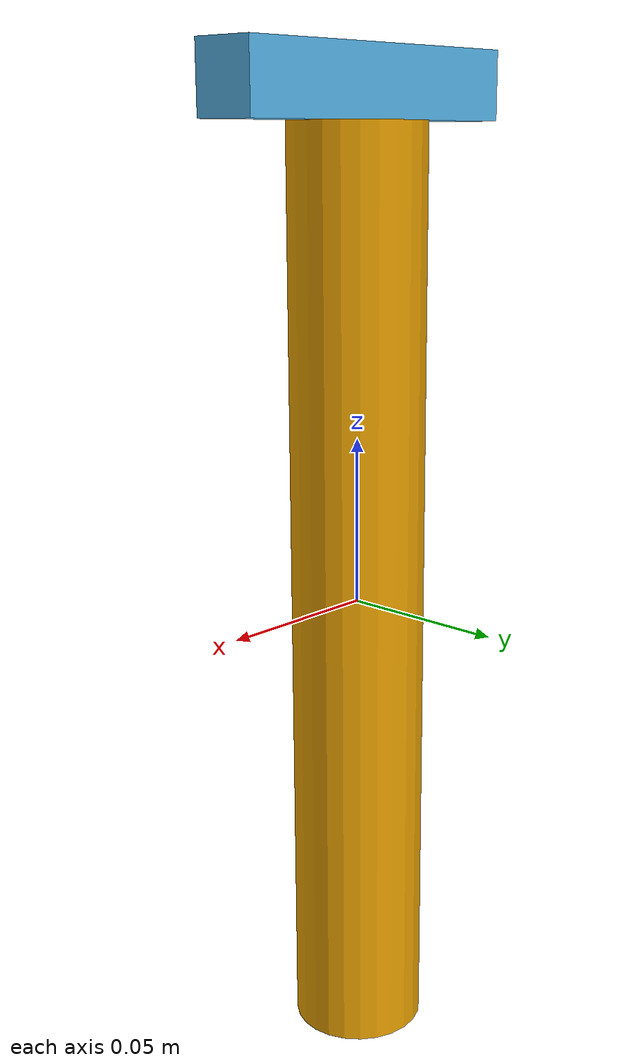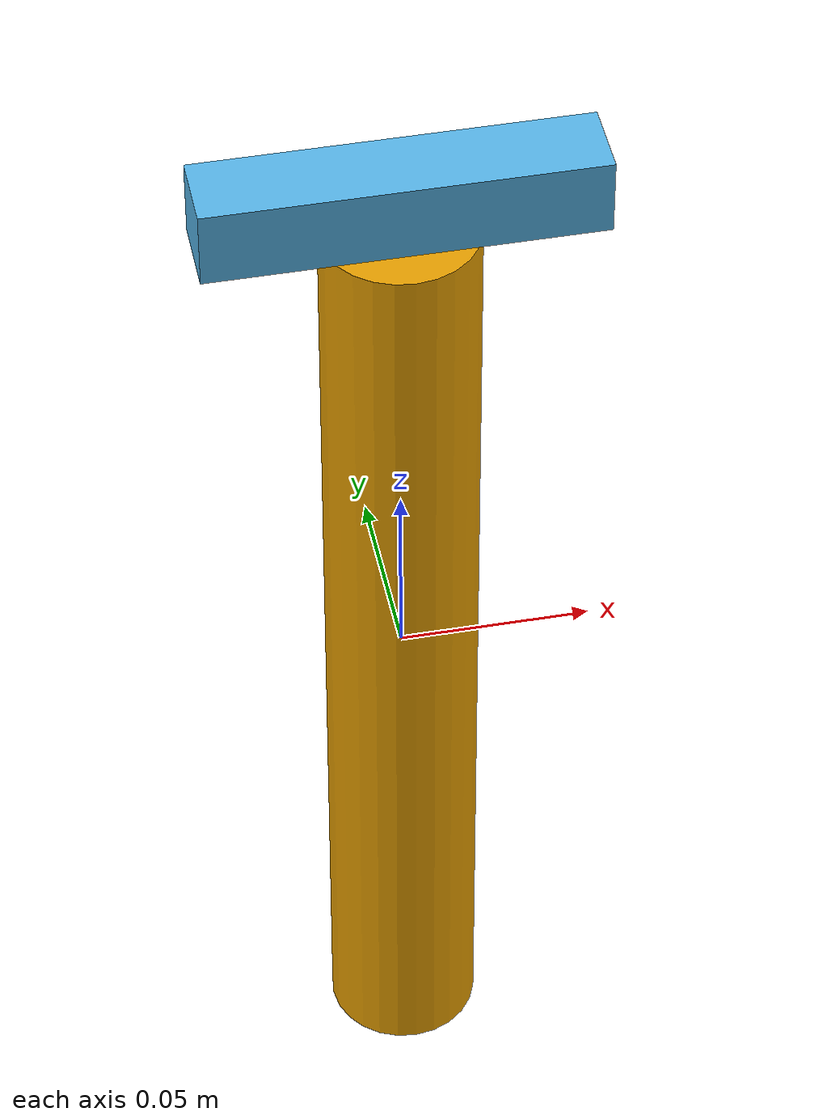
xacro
<?xml version="1.0"?>
<robot name="hammer" xmlns:xacro="http://www.ros.org/wiki/xacro">

<xacro:property name="h_length"  value="0.28"    />
<xacro:property name="w_mass"  value="0.02"    />

<link name="hammer_handle_link">

	<visual>
		<origin xyz="0 0 0" rpy="0 0 0"/>
		<geometry>
			<cylinder length="${h_length}" radius="0.02"/>
		</geometry>
        </visual>
</link>

<link name="hammer_mass_link">

	<visual>
		<origin xyz="0 0 0" rpy="0 0 0"/>
		<geometry>
			<box size="0.1 ${w_mass} ${w_mass}"/>
		</geometry>
        </visual>

</link>

<joint name="joint_handle_mass" type="fixed">
		<origin xyz="0 0 ${0.5* h_length + 0.5 * w_mass}" rpy="0 0 0"/>
		<parent link="hammer_handle_link"/>
		<child link="hammer_mass_link"/>
</joint>

</robot>
